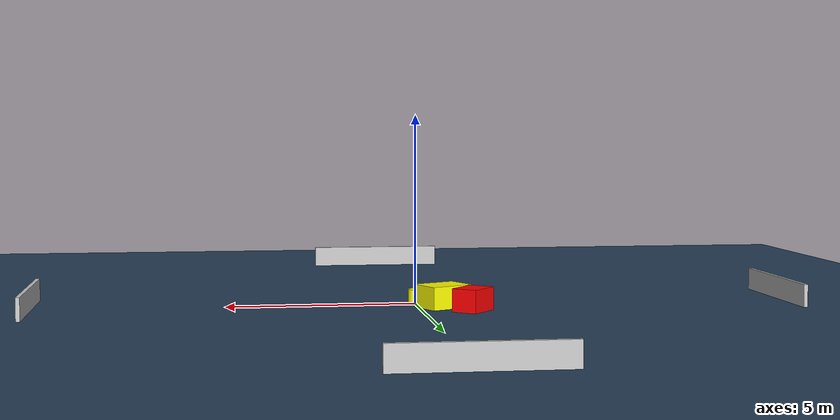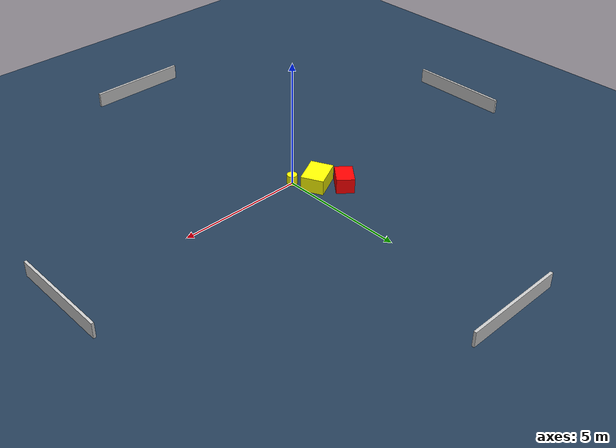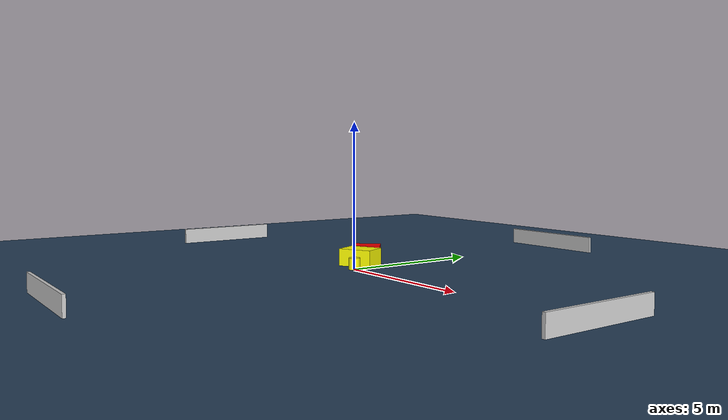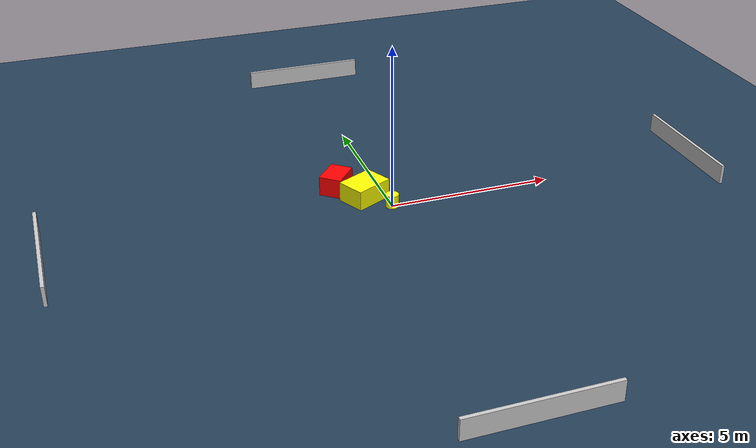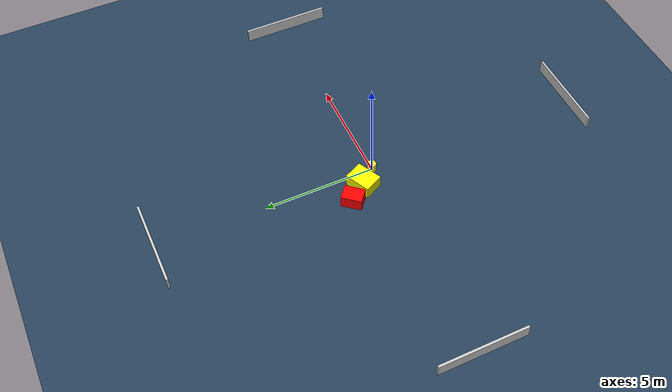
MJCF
<?xml version="1.0" ?>
<mujoco model="generated_environment">
  <option timestep="0.01" integrator="RK4" cone="elliptic"/>
  <default>
    <geom density="1"/>
  </default>
  <asset>
    <texture builtin="gradient" height="3072" name="skybox" rgb1="0.3 0.5 0.7" rgb2="0 0 0" type="skybox" width="512"/>
    <texture builtin="checker" height="300" name="groundplane" rgb1="0.2 0.3 0.4" rgb2="0.1 0.2 0.3" type="2d" width="300"/>
    <material name="groundplane" reflectance="0.2" texrepeat="5 5" texture="groundplane"/>
  </asset>
  <worldbody>
    <light dir="0 0 -1" directional="true" pos="0 0 1.5"/>
    <geom condim="3" friction="0.5 0.005 0.001" material="groundplane" name="floor" pos="0 0 0" size="0 0 0.05" type="plane"/>
    <body name="walls">
      <geom name="wall_1" condim="4" pos="-10.0 0.0 0.3" rgba="0.800000011920929 0.800000011920929 0.800000011920929 1.0" size="0.05 2.0 0.3" type="box"/>
      <geom name="wall_2" condim="4" pos="10.0 0.0 0.3" rgba="0.800000011920929 0.800000011920929 0.800000011920929 1.0" size="0.05 2.0 0.3" type="box"/>
      <geom name="wall_3" condim="4" pos="0.0 -10.0 0.3" rgba="0.800000011920929 0.800000011920929 0.800000011920929 1.0" size="2.0 0.05 0.3" type="box"/>
      <geom name="wall_4" condim="4" pos="0.0 10.0 0.3" rgba="0.800000011920929 0.800000011920929 0.800000011920929 1.0" size="2.0 0.05 0.3" type="box"/>
    </body>
    <body name="robot">
      <joint name="joint_x" type="slide" pos="0 0 0" axis="1 0 0"/>
      <joint name="joint_y" type="slide" pos="0 0 0" axis="0 1 0"/>
      <geom name="robot" type="cylinder" pos="0.0 0.0 0.2" size="0.2 0.2 0.0" mass="5.0" friction="1.0 0.005 0.0001" condim="4" rgba="1.0 1.0 0.0 1.0"/>
    </body>
    <body name="obstacle_1_movable">
      <geom name="obstacle_1_movable" condim="4" pos="-0.6297191981053101 0.6978565876903013 0.3" euler="0 0 26.26178777233946" friction="0.0 0.005 0.001" rgba="1.0 1.0 0.0 1.0" size="0.5980579103772077 0.4477349726970768 0.3" type="box" mass="0.1"/>
      <joint type="free"/>
    </body>
    <body name="obstacle_2_static">
      <geom name="obstacle_2_static" condim="4" pos="-1.281397840712434 1.4886776868383076 0.3" euler="0 0 140.0511545714492" friction="0.0 0.005 0.001" rgba="1.0 0.0 0.0 1.0" size="0.34506459790661115 0.46603091996296514 0.3" type="box"/>
    </body>
  </worldbody>
  <actuator>
    <motor name="actuator_x" joint="joint_x" gear="1" ctrlrange="-1 1"/>
    <motor name="actuator_y" joint="joint_y" gear="1" ctrlrange="-1 1"/>
  </actuator>
</mujoco>
